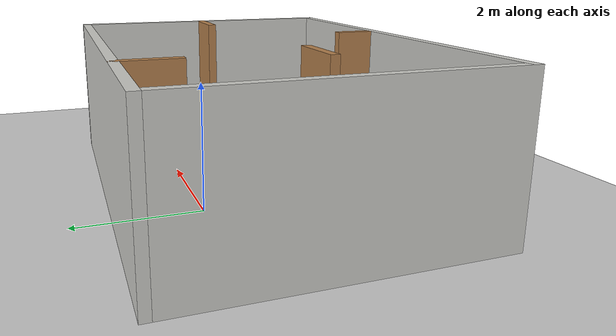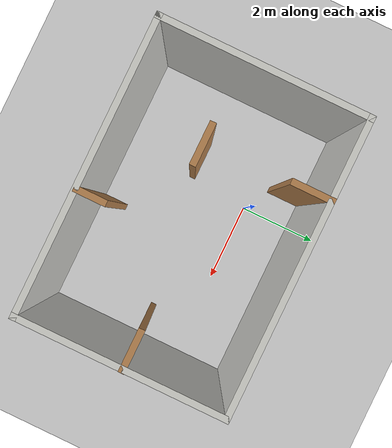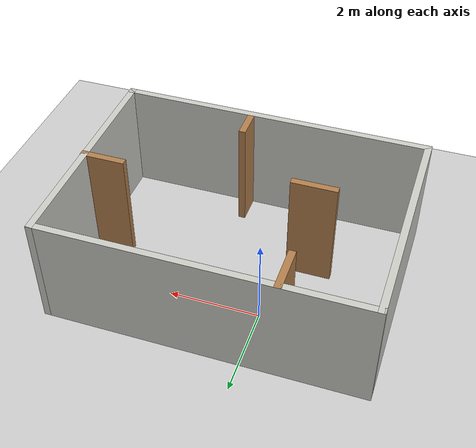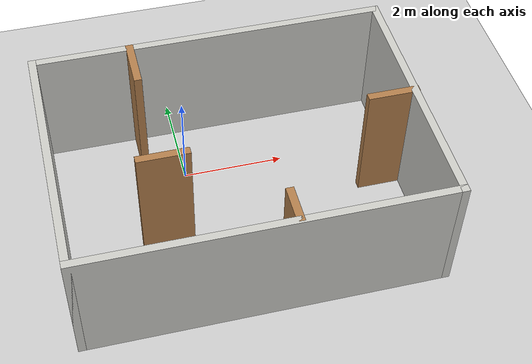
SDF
<sdf version="1.7">
 <world name="default">
  <light name="sun" type="directional">
   <pose>0 0 10 0 -0 0</pose>
   <diffuse>0.8 0.8 0.8 1</diffuse>
   <specular>0.2 0.2 0.2 1</specular>
   <attenuation>
    <range>1000</range>
    <constant>0.9</constant>
    <linear>0.01</linear>
    <quadratic>0.001</quadratic>
   </attenuation>
   <direction>-0.5 0.1 -0.9</direction>
   <spot><inner_angle>0</inner_angle><outer_angle>0</outer_angle><falloff>0</falloff></spot>
  </light>
  <model name="ground_plane">
   <static>1</static>
   <link name="link">
    <collision name="collision">
     <geometry><plane><normal>0 0 1</normal><size>100 100</size></plane></geometry>
     <surface>
      <contact><collide_bitmask>65535</collide_bitmask></contact>
      <friction><ode><mu>100</mu><mu2>50</mu2></ode></friction>
     </surface>
    </collision>
    <visual name="visual">
     <cast_shadows>0</cast_shadows>
     <geometry><plane><normal>0 0 1</normal><size>100 100</size></plane></geometry>
     <material>
      <script><uri>file://media/materials/scripts/gazebo.material</uri><name>Gazebo/Grey</name></script>
     </material>
    </visual>
   </link>
  </model>
  <gravity>0 0 -9.8</gravity>
  <magnetic_field>6e-06 2.3e-05 -4.2e-05</magnetic_field>
  <atmosphere type="adiabatic"/>
  <physics type="ode">
   <max_step_size>0.001</max_step_size>
   <real_time_factor>1</real_time_factor>
   <real_time_update_rate>1000</real_time_update_rate>
  </physics>
  <scene><ambient>0.4 0.4 0.4 1</ambient><background>0.7 0.7 0.7 1</background><shadows>1</shadows></scene>
  <spherical_coordinates>
   <surface_model>EARTH_WGS84</surface_model>
   <latitude_deg>0</latitude_deg>
   <longitude_deg>0</longitude_deg>
   <elevation>0</elevation>
   <heading_deg>0</heading_deg>
  </spherical_coordinates>
  <model name="Untitled">
   <pose>0.814684 -1.07153 0 0 -0 0</pose>
   <link name="Wall_1">
    <collision name="Wall_1_Collision">
     <geometry><box><size>7 0.15 2.5</size></box></geometry>
     <pose>0 0 1.25 0 -0 0</pose>
    </collision>
    <visual name="Wall_1_Visual">
     <pose>0 0 1.25 0 -0 0</pose>
     <geometry><box><size>7 0.15 2.5</size></box></geometry>
     <material>
      <script><uri>file://media/materials/scripts/gazebo.material</uri><name>Gazebo/CeilingTiled</name></script>
      <ambient>1 1 1 1</ambient>
     </material>
     <meta><layer>0</layer></meta>
    </visual>
    <pose>-0.005 -2.4725 0 0 -0 0</pose>
   </link>
   <link name="Wall_10">
    <collision name="Wall_10_Collision">
     <geometry><box><size>1 0.15 2.5</size></box></geometry>
     <pose>0 0 1.25 0 -0 0</pose>
    </collision>
    <visual name="Wall_10_Visual">
     <pose>0 0 1.25 0 -0 0</pose>
     <geometry><box><size>1 0.15 2.5</size></box></geometry>
     <material>
      <script><uri>file://media/materials/scripts/gazebo.material</uri><name>Gazebo/Wood</name></script>
      <ambient>1 1 1 1</ambient>
     </material>
     <meta><layer>0</layer></meta>
    </visual>
    <pose>-1.55 1.9525 0 0 -0 -1.5708</pose>
   </link>
   <link name="Wall_12">
    <collision name="Wall_12_Collision">
     <geometry><box><size>1 0.15 2.5</size></box></geometry>
     <pose>0 0 1.25 0 -0 0</pose>
    </collision>
    <visual name="Wall_12_Visual">
     <pose>0 0 1.25 0 -0 0</pose>
     <geometry><box><size>1 0.15 2.5</size></box></geometry>
     <material>
      <script><uri>file://media/materials/scripts/gazebo.material</uri><name>Gazebo/Wood</name></script>
      <ambient>1 1 1 1</ambient>
     </material>
     <meta><layer>0</layer></meta>
    </visual>
    <pose>-1.455 -0.5125 0 0 -0 0</pose>
   </link>
   <link name="Wall_2">
    <collision name="Wall_2_Collision">
     <geometry><box><size>5 0.15 2.5</size></box></geometry>
     <pose>0 0 1.25 0 -0 0</pose>
    </collision>
    <visual name="Wall_2_Visual">
     <pose>0 0 1.25 0 -0 0</pose>
     <geometry><box><size>5 0.15 2.5</size></box></geometry>
     <material>
      <script><uri>file://media/materials/scripts/gazebo.material</uri><name>Gazebo/CeilingTiled</name></script>
      <ambient>1 1 1 1</ambient>
     </material>
     <meta><layer>0</layer></meta>
    </visual>
    <pose>3.42 -0.0475 0 0 -0 1.5708</pose>
   </link>
   <link name="Wall_3">
    <collision name="Wall_3_Collision">
     <geometry><box><size>7 0.15 2.5</size></box></geometry>
     <pose>0 0 1.25 0 -0 0</pose>
    </collision>
    <visual name="Wall_3_Visual">
     <pose>0 0 1.25 0 -0 0</pose>
     <geometry><box><size>7 0.15 2.5</size></box></geometry>
     <material>
      <script><uri>file://media/materials/scripts/gazebo.material</uri><name>Gazebo/CeilingTiled</name></script>
      <ambient>1 1 1 1</ambient>
     </material>
     <meta><layer>0</layer></meta>
    </visual>
    <pose>-0.005 2.3775 0 0 -0 3.14159</pose>
   </link>
   <link name="Wall_4">
    <collision name="Wall_4_Collision">
     <geometry><box><size>5 0.15 2.5</size></box></geometry>
     <pose>0 0 1.25 0 -0 0</pose>
    </collision>
    <visual name="Wall_4_Visual">
     <pose>0 0 1.25 0 -0 0</pose>
     <geometry><box><size>5 0.15 2.5</size></box></geometry>
     <material>
      <script><uri>file://media/materials/scripts/gazebo.material</uri><name>Gazebo/CeilingTiled</name></script>
      <ambient>1 1 1 1</ambient>
     </material>
     <meta><layer>0</layer></meta>
    </visual>
    <pose>-3.43 -0.0475 0 0 -0 -1.5708</pose>
   </link>
   <link name="Wall_6">
    <collision name="Wall_6_Collision">
     <geometry><box><size>1 0.15 2.5</size></box></geometry>
     <pose>0 0 1.25 0 -0 0</pose>
    </collision>
    <visual name="Wall_6_Visual">
     <pose>0 0 1.25 0 -0 0</pose>
     <geometry><box><size>1 0.15 2.5</size></box></geometry>
     <material>
      <script><uri>file://media/materials/scripts/gazebo.material</uri><name>Gazebo/Wood</name></script>
      <ambient>1 1 1 1</ambient>
     </material>
     <meta><layer>0</layer></meta>
    </visual>
    <pose>3.005 0.0175 0 0 -0 3.14159</pose>
   </link>
   <link name="Wall_8">
    <collision name="Wall_8_Collision">
     <geometry><box><size>0.75 0.15 2.5</size></box></geometry>
     <pose>0 0 1.25 0 -0 0</pose>
    </collision>
    <visual name="Wall_8_Visual">
     <pose>0 0 1.25 0 -0 0</pose>
     <geometry><box><size>0.75 0.15 2.5</size></box></geometry>
     <material>
      <script><uri>file://media/materials/scripts/gazebo.material</uri><name>Gazebo/Wood</name></script>
      <ambient>1 1 1 1</ambient>
     </material>
     <meta><layer>0</layer></meta>
    </visual>
    <pose>0.51 -2.1325 0 0 -0 1.5708</pose>
   </link>
   <static>1</static>
  </model>
 </world>
</sdf>
